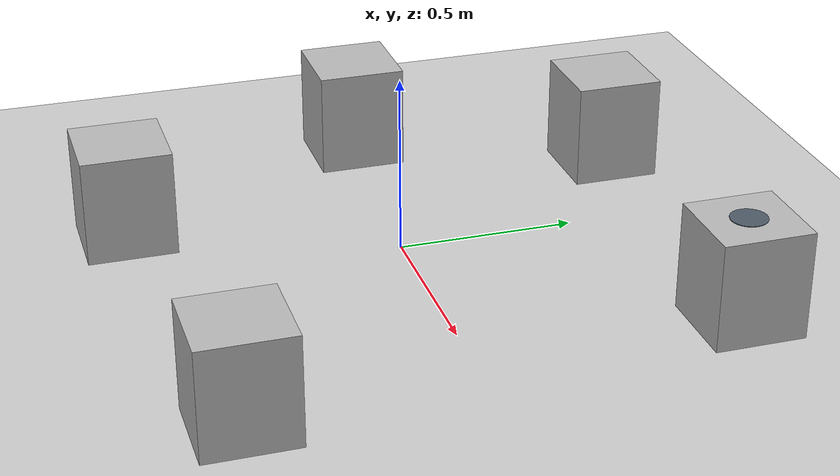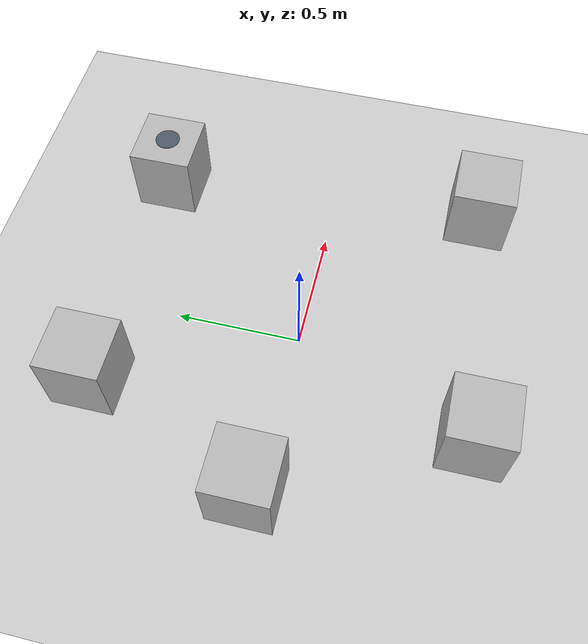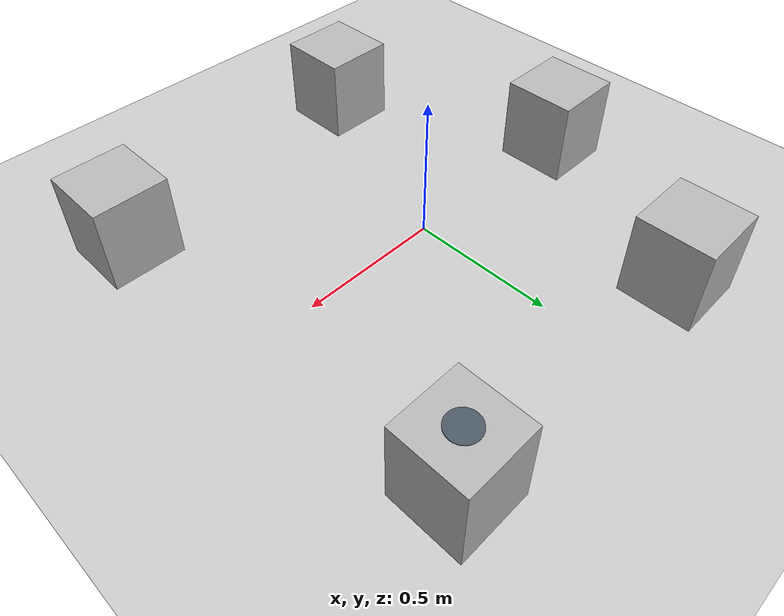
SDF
<sdf version='1.10'>
  <world name='empty'>
    <physics name='1ms' type='ignored'>
      <max_step_size>0.001</max_step_size>
      <real_time_factor>1</real_time_factor>
      <real_time_update_rate>1000</real_time_update_rate>
    </physics>
    <plugin name='gz::sim::systems::Physics' filename='gz-sim-physics-system'/>
    <plugin name='gz::sim::systems::UserCommands' filename='gz-sim-user-commands-system'/>
    <plugin name='gz::sim::systems::SceneBroadcaster' filename='gz-sim-scene-broadcaster-system'/>
    <plugin name='gz::sim::systems::Contact' filename='gz-sim-contact-system'/>
    <gravity>0 0 -9.8000000000000007</gravity>
    <magnetic_field>5.5644999999999998e-06 2.2875799999999999e-05 -4.2388400000000002e-05</magnetic_field>
    <atmosphere type='adiabatic'/>
    <scene>
      <ambient>0.400000006 0.400000006 0.400000006 1</ambient>
      <background>0.699999988 0.699999988 0.699999988 1</background>
      <shadows>true</shadows>
    </scene>
    <model name='ground_plane'>
      <static>true</static>
      <link name='link'>
        <collision name='collision'>
          <geometry>
            <plane>
              <normal>0 0 1</normal>
              <size>100 100</size>
            </plane>
          </geometry>
          <surface>
            <friction>
              <ode/>
            </friction>
            <bounce/>
            <contact/>
          </surface>
        </collision>
        <visual name='visual'>
          <geometry>
            <plane>
              <normal>0 0 1</normal>
              <size>100 100</size>
            </plane>
          </geometry>
          <material>
            <ambient>0.800000012 0.800000012 0.800000012 1</ambient>
            <diffuse>0.800000012 0.800000012 0.800000012 1</diffuse>
            <specular>0.800000012 0.800000012 0.800000012 1</specular>
          </material>
        </visual>
        <pose>0 0 0 0 0 0</pose>
        <inertial>
          <pose>0 0 0 0 0 0</pose>
          <mass>1</mass>
          <inertia>
            <ixx>1</ixx>
            <ixy>0</ixy>
            <ixz>0</ixz>
            <iyy>1</iyy>
            <iyz>0</iyz>
            <izz>1</izz>
          </inertia>
        </inertial>
        <enable_wind>false</enable_wind>
      </link>
      <pose>0 0 0 0 0 0</pose>
      <self_collide>false</self_collide>
    </model>
    <model name='station_wafer_stack'>
      <static>true</static>
      <pose>0.64999997615814209 0.72094446420669556 0.15000000596046448 0 0 0</pose>
      <link name='link'>
        <visual name='v'>
          <geometry>
            <box>
              <size>0.25 0.25 0.29999999999999999</size>
            </box>
          </geometry>
        </visual>
        <collision name='c'>
          <geometry>
            <box>
              <size>0.25 0.25 0.29999999999999999</size>
            </box>
          </geometry>
          <surface>
            <friction>
              <ode/>
            </friction>
            <bounce/>
            <contact/>
          </surface>
        </collision>
        <pose>0 0 0 0 0 0</pose>
        <inertial>
          <pose>0 0 0 0 0 0</pose>
          <mass>1</mass>
          <inertia>
            <ixx>1</ixx>
            <ixy>0</ixy>
            <ixz>0</ixz>
            <iyy>1</iyy>
            <iyz>0</iyz>
            <izz>1</izz>
          </inertia>
        </inertial>
        <enable_wind>false</enable_wind>
      </link>
      <self_collide>false</self_collide>
    </model>
    <model name='station_spinner'>
      <static>true</static>
      <pose>-0.34999999403953552 0.73905795812606812 0.15000000596046448 0 0 0</pose>
      <link name='link'>
        <visual name='v'>
          <geometry>
            <box>
              <size>0.25 0.25 0.29999999999999999</size>
            </box>
          </geometry>
        </visual>
        <collision name='c'>
          <geometry>
            <box>
              <size>0.25 0.25 0.29999999999999999</size>
            </box>
          </geometry>
          <surface>
            <friction>
              <ode/>
            </friction>
            <bounce/>
            <contact/>
          </surface>
        </collision>
        <pose>0 0 0 0 0 0</pose>
        <inertial>
          <pose>0 0 0 0 0 0</pose>
          <mass>1</mass>
          <inertia>
            <ixx>1</ixx>
            <ixy>0</ixy>
            <ixz>0</ixz>
            <iyy>1</iyy>
            <iyz>0</iyz>
            <izz>1</izz>
          </inertia>
        </inertial>
        <enable_wind>false</enable_wind>
      </link>
      <self_collide>false</self_collide>
    </model>
    <model name='station_dlp_microscope'>
      <static>true</static>
      <pose>-0.6501610279083252 0.039159901440143585 0.15000000596046448 0 0 0</pose>
      <link name='link'>
        <visual name='v'>
          <geometry>
            <box>
              <size>0.25 0.25 0.29999999999999999</size>
            </box>
          </geometry>
        </visual>
        <collision name='c'>
          <geometry>
            <box>
              <size>0.25 0.25 0.29999999999999999</size>
            </box>
          </geometry>
          <surface>
            <friction>
              <ode/>
            </friction>
            <bounce/>
            <contact/>
          </surface>
        </collision>
        <pose>0 0 0 0 0 0</pose>
        <inertial>
          <pose>0 0 0 0 0 0</pose>
          <mass>1</mass>
          <inertia>
            <ixx>1</ixx>
            <ixy>0</ixy>
            <ixz>0</ixz>
            <iyy>1</iyy>
            <iyz>0</iyz>
            <izz>1</izz>
          </inertia>
        </inertial>
        <enable_wind>false</enable_wind>
      </link>
      <self_collide>false</self_collide>
    </model>
    <model name='station_dev'>
      <static>true</static>
      <pose>-0.27492350339889526 -0.72034502029418945 0.15000000596046448 0 0 0</pose>
      <link name='link'>
        <visual name='v'>
          <geometry>
            <box>
              <size>0.25 0.25 0.29999999999999999</size>
            </box>
          </geometry>
        </visual>
        <collision name='c'>
          <geometry>
            <box>
              <size>0.25 0.25 0.29999999999999999</size>
            </box>
          </geometry>
          <surface>
            <friction>
              <ode/>
            </friction>
            <bounce/>
            <contact/>
          </surface>
        </collision>
        <pose>0 0 0 0 0 0</pose>
        <inertial>
          <pose>0 0 0 0 0 0</pose>
          <mass>1</mass>
          <inertia>
            <ixx>1</ixx>
            <ixy>0</ixy>
            <ixz>0</ixz>
            <iyy>1</iyy>
            <iyz>0</iyz>
            <izz>1</izz>
          </inertia>
        </inertial>
        <enable_wind>false</enable_wind>
      </link>
      <self_collide>false</self_collide>
    </model>
    <model name='station_inspection'>
      <static>true</static>
      <pose>0.75268900394439697 -0.61424201726913452 0.15000000596046448 0 0 0</pose>
      <link name='link'>
        <visual name='v'>
          <geometry>
            <box>
              <size>0.25 0.25 0.29999999999999999</size>
            </box>
          </geometry>
        </visual>
        <collision name='c'>
          <geometry>
            <box>
              <size>0.25 0.25 0.29999999999999999</size>
            </box>
          </geometry>
          <surface>
            <friction>
              <ode/>
            </friction>
            <bounce/>
            <contact/>
          </surface>
        </collision>
        <pose>0 0 0 0 0 0</pose>
        <inertial>
          <pose>0 0 0 0 0 0</pose>
          <mass>1</mass>
          <inertia>
            <ixx>1</ixx>
            <ixy>0</ixy>
            <ixz>0</ixz>
            <iyy>1</iyy>
            <iyz>0</iyz>
            <izz>1</izz>
          </inertia>
        </inertial>
        <enable_wind>false</enable_wind>
      </link>
      <self_collide>false</self_collide>
    </model>
        <model name="wafer">
        <pose>0.64999997615814209 0.72094446420669556 0.3010000060 0 0 0</pose>  <!-- position of your wafer_stack station -->
        <link name="wafer_link">
            <visual name="v">
                <geometry>
                    <cylinder><radius>0.05</radius><length>0.002</length></cylinder>
                </geometry>

            <material>
              <!-- Dark bluish-grey base color -->
              <ambient>0.2 0.25 0.3 1</ambient>
              <diffuse>0.3 0.35 0.4 1</diffuse>
              <!-- High specular for that mirror-like reflection -->
              <specular>0.8 0.8 0.9 1</specular>
              <!-- Shininess (0 to 128) - higher is more "polished" -->
              <shininess>100</shininess>
            </material>

            </visual>
            <collision name="c">
                <geometry>
                    <cylinder><radius>0.05</radius><length>0.002</length></cylinder>
                </geometry>
            </collision>
            <inertial>
                <mass>0.01</mass>
            </inertial>
        </link>
    </model>
    <light name='sun' type='directional'>
      <pose>0 0 10 0 0 0</pose>
      <cast_shadows>true</cast_shadows>
      <intensity>1</intensity>
      <direction>-0.5 0.10000000000000001 -0.90000000000000002</direction>
      <diffuse>0.800000012 0.800000012 0.800000012 1</diffuse>
      <specular>0.200000003 0.200000003 0.200000003 1</specular>
      <attenuation>
        <range>1000</range>
        <linear>0.01</linear>
        <constant>0.90000000000000002</constant>
        <quadratic>0.001</quadratic>
      </attenuation>
      <spot>
        <inner_angle>0</inner_angle>
        <outer_angle>0</outer_angle>
        <falloff>0</falloff>
      </spot>
    </light>
  </world>
</sdf>
